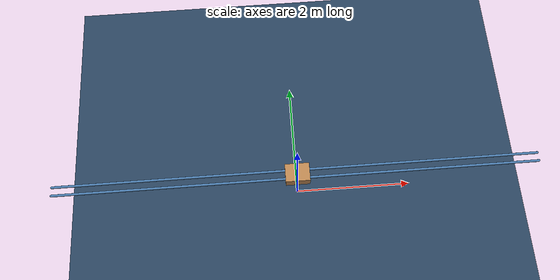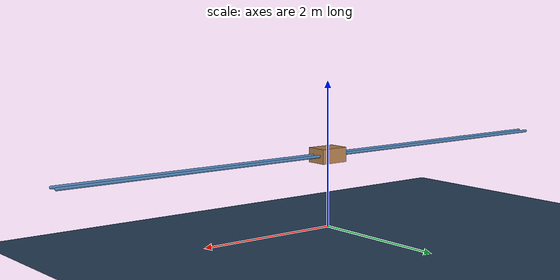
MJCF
<mujoco model="pointmass">

    <visual>
        <headlight ambient=".4 .4 .4" diffuse=".8 .8 .8" specular="0.1 0.1 0.1"/>
        <map znear=".01"/>
        <quality shadowsize="2048"/>
    </visual>

    <asset>
        <texture name="skybox" type="skybox" builtin="gradient" rgb1=".4 .6 .8" rgb2="0 0 0"
                 width="800" height="800" mark="random" markrgb="1 1 1"/>
    </asset>

    <asset>
        <texture name="grid" type="2d" builtin="checker" rgb1=".1 .2 .3" rgb2=".2 .3 .4" width="300" height="300" mark="edge" markrgb=".2 .3 .4"/>
        <material name="grid" texture="grid" texrepeat="1 1" texuniform="true" reflectance=".2"/>
        <material name="self" rgba=".7 .5 .3 1"/>
        <material name="self_default" rgba=".7 .5 .3 1"/>
        <material name="self_highlight" rgba="0 .5 .3 1"/>
        <material name="effector" rgba=".7 .4 .2 1"/>
        <material name="effector_default" rgba=".7 .4 .2 1"/>
        <material name="effector_highlight" rgba="0 .5 .3 1"/>
        <material name="decoration" rgba=".3 .5 .7 1"/>
        <material name="eye" rgba="0 .2 1 1"/>
        <material name="target" rgba=".6 .3 .3 1"/>
        <material name="target_default" rgba=".6 .3 .3 1"/>
        <material name="target_highlight" rgba=".6 .3 .3 .4"/>
    </asset>

    <option timestep="0.01" integrator="RK4">
        <flag contact="disable" energy="enable" gravity="enable"/>
    </option>

    <worldbody>
        <light name="light" pos="0 0 6"/>
        <camera name="fixed" pos="0 -4 1" zaxis="0 -1 0"/>
        <camera name="lookatcart" mode="targetbody" target="cart" pos="0 -2 2"/>
        <geom name="floor" pos="0 0 -.05" size="4 4 .2" type="plane" material="grid"/>
        <geom name="rail1" type="capsule" pos="0  .07 1" zaxis="1 0 0" size="0.02 4" material="decoration" />
        <geom name="rail2" type="capsule" pos="0 -.07 1" zaxis="1 0 0" size="0.02 4" material="decoration" />
        <body name="cart" pos="0 0 1">
            <joint name="slider" type="slide" limited="false" axis="1 0 0" range="-1.8 1.8" solreflimit=".08 1" damping="5e-4"/>
            <geom name="cart" type="box" size="0.2 0.15 0.1" material="self"  mass="1"/>
        </body>
    </worldbody>

    <actuator>
        <motor name="slide" joint="slider" gear="10" ctrllimited="true" ctrlrange="-1 1" />
    </actuator>

</mujoco>
